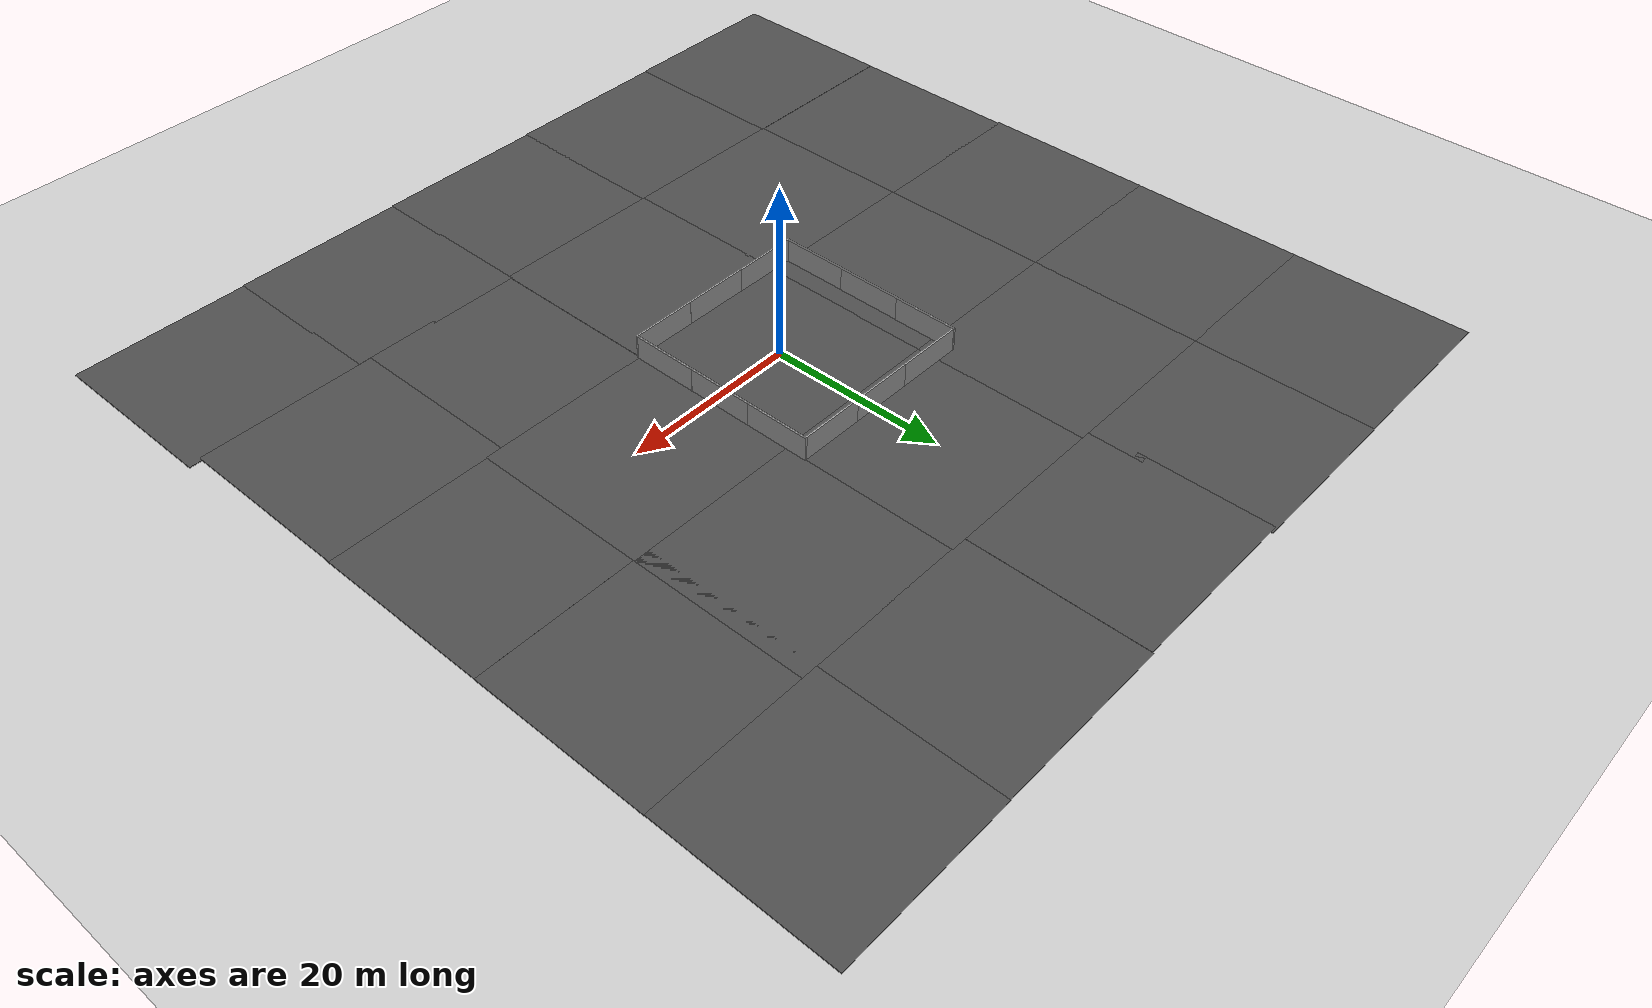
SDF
<sdf version="1.6">
 <world name="default">
  <light name="sun" type="directional">
   <pose>0 0 10 0 -0 0</pose>
   <diffuse>0.8 0.8 0.8 1</diffuse>
   <specular>0.2 0.2 0.2 1</specular>
   <attenuation>
    <range>1000</range>
    <constant>0.9</constant>
    <linear>0.01</linear>
    <quadratic>0.001</quadratic>
   </attenuation>
   <direction>-0.5 0.1 -0.9</direction>
  </light>
  <model name="ground_plane">
   <static>1</static>
   <link name="link">
    <collision name="collision">
     <geometry><plane><normal>0 0 1</normal><size>100 100</size></plane></geometry>
     <surface><friction><ode><mu>100</mu><mu2>50</mu2></ode></friction></surface>
    </collision>
    <visual name="visual">
     <cast_shadows>0</cast_shadows>
     <geometry><plane><normal>0 0 1</normal><size>100 100</size></plane></geometry>
     <material>
      <script><uri>file://media/materials/scripts/gazebo.material</uri><name>Gazebo/Grey</name></script>
     </material>
    </visual>
   </link>
  </model>
  <gravity>0 0 -9.8</gravity>
  <magnetic_field>6e-06 2.3e-05 -4.2e-05</magnetic_field>
  <atmosphere type="adiabatic"/>
  <physics name="default_physics" default="0" type="ode">
   <max_step_size>0.001</max_step_size>
   <real_time_factor>1</real_time_factor>
   <real_time_update_rate>1000</real_time_update_rate>
  </physics>
  <scene><ambient>0.4 0.4 0.4 1</ambient><background>0.7 0.7 0.7 1</background><shadows>1</shadows></scene>
  <spherical_coordinates>
   <surface_model>EARTH_WGS84</surface_model>
   <latitude_deg>0</latitude_deg>
   <longitude_deg>0</longitude_deg>
   <elevation>0</elevation>
   <heading_deg>0</heading_deg>
  </spherical_coordinates>
  <model name="asphalt_plane">
   <static>1</static>
   <link name="link">
    <collision name="collision"><geometry><box><size>20 20 0.1</size></box></geometry></collision>
    <visual name="visual">
     <cast_shadows>0</cast_shadows>
     <geometry><box><size>20 20 0.1</size></box></geometry>
     <material>
      <script>
       <uri>model://asphalt_plane/materials/scripts</uri>
       <uri>model://asphalt_plane/materials/textures</uri>
       <name>vrc/asphalt</name>
      </script>
     </material>
    </visual>
   </link>
   <pose>-0.035436 -0.049554 0 0 -0 0</pose>
  </model>
  <model name="asphalt_plane_clone">
   <static>1</static>
   <link name="link">
    <collision name="collision"><geometry><box><size>20 20 0.1</size></box></geometry></collision>
    <visual name="visual">
     <cast_shadows>0</cast_shadows>
     <geometry><box><size>20 20 0.1</size></box></geometry>
     <material>
      <script>
       <uri>model://asphalt_plane/materials/scripts</uri>
       <uri>model://asphalt_plane/materials/textures</uri>
       <name>vrc/asphalt</name>
      </script>
     </material>
    </visual>
   </link>
   <pose>-0.017474 19.8639 0 0 -0 0</pose>
  </model>
  <model name="asphalt_plane_clone_0">
   <static>1</static>
   <link name="link">
    <collision name="collision"><geometry><box><size>20 20 0.1</size></box></geometry></collision>
    <visual name="visual">
     <cast_shadows>0</cast_shadows>
     <geometry><box><size>20 20 0.1</size></box></geometry>
     <material>
      <script>
       <uri>model://asphalt_plane/materials/scripts</uri>
       <uri>model://asphalt_plane/materials/textures</uri>
       <name>vrc/asphalt</name>
      </script>
     </material>
    </visual>
   </link>
   <pose>19.9692 -0.038986 0 0 -0 0</pose>
  </model>
  <model name="asphalt_plane_clone_1">
   <static>1</static>
   <link name="link">
    <collision name="collision"><geometry><box><size>20 20 0.1</size></box></geometry></collision>
    <visual name="visual">
     <cast_shadows>0</cast_shadows>
     <geometry><box><size>20 20 0.1</size></box></geometry>
     <material>
      <script>
       <uri>model://asphalt_plane/materials/scripts</uri>
       <uri>model://asphalt_plane/materials/textures</uri>
       <name>vrc/asphalt</name>
      </script>
     </material>
    </visual>
   </link>
   <pose>-0.166139 -20.0107 0 0 -0 0</pose>
  </model>
  <model name="asphalt_plane_clone_2">
   <static>1</static>
   <link name="link">
    <collision name="collision"><geometry><box><size>20 20 0.1</size></box></geometry></collision>
    <visual name="visual">
     <cast_shadows>0</cast_shadows>
     <geometry><box><size>20 20 0.1</size></box></geometry>
     <material>
      <script>
       <uri>model://asphalt_plane/materials/scripts</uri>
       <uri>model://asphalt_plane/materials/textures</uri>
       <name>vrc/asphalt</name>
      </script>
     </material>
    </visual>
   </link>
   <pose>-19.9402 -0.005264 0 0 -0 0</pose>
  </model>
  <model name="asphalt_plane_clone_3">
   <static>1</static>
   <link name="link">
    <collision name="collision"><geometry><box><size>20 20 0.1</size></box></geometry></collision>
    <visual name="visual">
     <cast_shadows>0</cast_shadows>
     <geometry><box><size>20 20 0.1</size></box></geometry>
     <material>
      <script>
       <uri>model://asphalt_plane/materials/scripts</uri>
       <uri>model://asphalt_plane/materials/textures</uri>
       <name>vrc/asphalt</name>
      </script>
     </material>
    </visual>
   </link>
   <pose>-39.9405 -0.010147 0 0 -0 0</pose>
  </model>
  <model name="asphalt_plane_clone_4">
   <static>1</static>
   <link name="link">
    <collision name="collision"><geometry><box><size>20 20 0.1</size></box></geometry></collision>
    <visual name="visual">
     <cast_shadows>0</cast_shadows>
     <geometry><box><size>20 20 0.1</size></box></geometry>
     <material>
      <script>
       <uri>model://asphalt_plane/materials/scripts</uri>
       <uri>model://asphalt_plane/materials/textures</uri>
       <name>vrc/asphalt</name>
      </script>
     </material>
    </visual>
   </link>
   <pose>-19.9561 19.8707 0 0 -0 0</pose>
  </model>
  <model name="asphalt_plane_clone_5">
   <static>1</static>
   <link name="link">
    <collision name="collision"><geometry><box><size>20 20 0.1</size></box></geometry></collision>
    <visual name="visual">
     <cast_shadows>0</cast_shadows>
     <geometry><box><size>20 20 0.1</size></box></geometry>
     <material>
      <script>
       <uri>model://asphalt_plane/materials/scripts</uri>
       <uri>model://asphalt_plane/materials/textures</uri>
       <name>vrc/asphalt</name>
      </script>
     </material>
    </visual>
   </link>
   <pose>19.9635 19.8334 0 0 -0 0</pose>
  </model>
  <model name="asphalt_plane_clone_6">
   <static>1</static>
   <link name="link">
    <collision name="collision"><geometry><box><size>20 20 0.1</size></box></geometry></collision>
    <visual name="visual">
     <cast_shadows>0</cast_shadows>
     <geometry><box><size>20 20 0.1</size></box></geometry>
     <material>
      <script>
       <uri>model://asphalt_plane/materials/scripts</uri>
       <uri>model://asphalt_plane/materials/textures</uri>
       <name>vrc/asphalt</name>
      </script>
     </material>
    </visual>
   </link>
   <pose>19.8504 -19.9679 0 0 -0 0</pose>
  </model>
  <model name="asphalt_plane_clone_7">
   <static>1</static>
   <link name="link">
    <collision name="collision"><geometry><box><size>20 20 0.1</size></box></geometry></collision>
    <visual name="visual">
     <cast_shadows>0</cast_shadows>
     <geometry><box><size>20 20 0.1</size></box></geometry>
     <material>
      <script>
       <uri>model://asphalt_plane/materials/scripts</uri>
       <uri>model://asphalt_plane/materials/textures</uri>
       <name>vrc/asphalt</name>
      </script>
     </material>
    </visual>
   </link>
   <pose>-19.9737 -19.9962 0 0 -0 0</pose>
  </model>
  <model name="asphalt_plane_clone_8">
   <static>1</static>
   <link name="link">
    <collision name="collision"><geometry><box><size>20 20 0.1</size></box></geometry></collision>
    <visual name="visual">
     <cast_shadows>0</cast_shadows>
     <geometry><box><size>20 20 0.1</size></box></geometry>
     <material>
      <script>
       <uri>model://asphalt_plane/materials/scripts</uri>
       <uri>model://asphalt_plane/materials/textures</uri>
       <name>vrc/asphalt</name>
      </script>
     </material>
    </visual>
   </link>
   <pose>-39.7486 -19.8751 0 0 -0 0</pose>
  </model>
  <model name="asphalt_plane_clone_9">
   <static>1</static>
   <link name="link">
    <collision name="collision"><geometry><box><size>20 20 0.1</size></box></geometry></collision>
    <visual name="visual">
     <cast_shadows>0</cast_shadows>
     <geometry><box><size>20 20 0.1</size></box></geometry>
     <material>
      <script>
       <uri>model://asphalt_plane/materials/scripts</uri>
       <uri>model://asphalt_plane/materials/textures</uri>
       <name>vrc/asphalt</name>
      </script>
     </material>
    </visual>
   </link>
   <pose>-39.9079 19.9034 0 0 -0 0</pose>
  </model>
  <model name="asphalt_plane_clone_10">
   <static>1</static>
   <link name="link">
    <collision name="collision"><geometry><box><size>20 20 0.1</size></box></geometry></collision>
    <visual name="visual">
     <cast_shadows>0</cast_shadows>
     <geometry><box><size>20 20 0.1</size></box></geometry>
     <material>
      <script>
       <uri>model://asphalt_plane/materials/scripts</uri>
       <uri>model://asphalt_plane/materials/textures</uri>
       <name>vrc/asphalt</name>
      </script>
     </material>
    </visual>
   </link>
   <pose>-39.906 39.7932 0 0 -0 0</pose>
  </model>
  <model name="asphalt_plane_clone_11">
   <static>1</static>
   <link name="link">
    <collision name="collision"><geometry><box><size>20 20 0.1</size></box></geometry></collision>
    <visual name="visual">
     <cast_shadows>0</cast_shadows>
     <geometry><box><size>20 20 0.1</size></box></geometry>
     <material>
      <script>
       <uri>model://asphalt_plane/materials/scripts</uri>
       <uri>model://asphalt_plane/materials/textures</uri>
       <name>vrc/asphalt</name>
      </script>
     </material>
    </visual>
   </link>
   <pose>-20.9908 39.8352 0 0 -0 0</pose>
  </model>
  <model name="asphalt_plane_clone_12">
   <static>1</static>
   <link name="link">
    <collision name="collision"><geometry><box><size>20 20 0.1</size></box></geometry></collision>
    <visual name="visual">
     <cast_shadows>0</cast_shadows>
     <geometry><box><size>20 20 0.1</size></box></geometry>
     <material>
      <script>
       <uri>model://asphalt_plane/materials/scripts</uri>
       <uri>model://asphalt_plane/materials/textures</uri>
       <name>vrc/asphalt</name>
      </script>
     </material>
    </visual>
   </link>
   <pose>-1.84283 39.6085 0 0 -0 0</pose>
  </model>
  <model name="asphalt_plane_clone_13">
   <static>1</static>
   <link name="link">
    <collision name="collision"><geometry><box><size>20 20 0.1</size></box></geometry></collision>
    <visual name="visual">
     <cast_shadows>0</cast_shadows>
     <geometry><box><size>20 20 0.1</size></box></geometry>
     <material>
      <script>
       <uri>model://asphalt_plane/materials/scripts</uri>
       <uri>model://asphalt_plane/materials/textures</uri>
       <name>vrc/asphalt</name>
      </script>
     </material>
    </visual>
   </link>
   <pose>18.1684 39.761 0 0 -0 0</pose>
  </model>
  <model name="asphalt_plane_clone_14">
   <static>1</static>
   <link name="link">
    <collision name="collision"><geometry><box><size>20 20 0.1</size></box></geometry></collision>
    <visual name="visual">
     <cast_shadows>0</cast_shadows>
     <geometry><box><size>20 20 0.1</size></box></geometry>
     <material>
      <script>
       <uri>model://asphalt_plane/materials/scripts</uri>
       <uri>model://asphalt_plane/materials/textures</uri>
       <name>vrc/asphalt</name>
      </script>
     </material>
    </visual>
   </link>
   <pose>38.1611 39.8084 0 0 -0 0</pose>
  </model>
  <model name="asphalt_plane_clone_15">
   <static>1</static>
   <link name="link">
    <collision name="collision"><geometry><box><size>20 20 0.1</size></box></geometry></collision>
    <visual name="visual">
     <cast_shadows>0</cast_shadows>
     <geometry><box><size>20 20 0.1</size></box></geometry>
     <material>
      <script>
       <uri>model://asphalt_plane/materials/scripts</uri>
       <uri>model://asphalt_plane/materials/textures</uri>
       <name>vrc/asphalt</name>
      </script>
     </material>
    </visual>
   </link>
   <pose>38.1952 19.8491 0 0 -0 0</pose>
  </model>
  <model name="asphalt_plane_clone_16">
   <static>1</static>
   <link name="link">
    <collision name="collision"><geometry><box><size>20 20 0.1</size></box></geometry></collision>
    <visual name="visual">
     <cast_shadows>0</cast_shadows>
     <geometry><box><size>20 20 0.1</size></box></geometry>
     <material>
      <script>
       <uri>model://asphalt_plane/materials/scripts</uri>
       <uri>model://asphalt_plane/materials/textures</uri>
       <name>vrc/asphalt</name>
      </script>
     </material>
    </visual>
   </link>
   <pose>38.1806 -0.156102 0 0 -0 0</pose>
  </model>
  <model name="asphalt_plane_clone_17">
   <static>1</static>
   <link name="link">
    <collision name="collision"><geometry><box><size>20 20 0.1</size></box></geometry></collision>
    <visual name="visual">
     <cast_shadows>0</cast_shadows>
     <geometry><box><size>20 20 0.1</size></box></geometry>
     <material>
      <script>
       <uri>model://asphalt_plane/materials/scripts</uri>
       <uri>model://asphalt_plane/materials/textures</uri>
       <name>vrc/asphalt</name>
      </script>
     </material>
    </visual>
   </link>
   <pose>38.1279 -19.9166 0 0 -0 0</pose>
  </model>
  <model name="asphalt_plane_clone_18">
   <static>1</static>
   <link name="link">
    <collision name="collision"><geometry><box><size>20 20 0.1</size></box></geometry></collision>
    <visual name="visual">
     <cast_shadows>0</cast_shadows>
     <geometry><box><size>20 20 0.1</size></box></geometry>
     <material>
      <script>
       <uri>model://asphalt_plane/materials/scripts</uri>
       <uri>model://asphalt_plane/materials/textures</uri>
       <name>vrc/asphalt</name>
      </script>
     </material>
    </visual>
   </link>
   <pose>-39.7977 -39.9286 0 0 -0 0</pose>
  </model>
  <model name="asphalt_plane_clone_19">
   <static>1</static>
   <link name="link">
    <collision name="collision"><geometry><box><size>20 20 0.1</size></box></geometry></collision>
    <visual name="visual">
     <cast_shadows>0</cast_shadows>
     <geometry><box><size>20 20 0.1</size></box></geometry>
     <material>
      <script>
       <uri>model://asphalt_plane/materials/scripts</uri>
       <uri>model://asphalt_plane/materials/textures</uri>
       <name>vrc/asphalt</name>
      </script>
     </material>
    </visual>
   </link>
   <pose>-19.97 -39.8205 0 0 -0 0</pose>
  </model>
  <model name="asphalt_plane_clone_20">
   <static>1</static>
   <link name="link">
    <collision name="collision"><geometry><box><size>20 20 0.1</size></box></geometry></collision>
    <visual name="visual">
     <cast_shadows>0</cast_shadows>
     <geometry><box><size>20 20 0.1</size></box></geometry>
     <material>
      <script>
       <uri>model://asphalt_plane/materials/scripts</uri>
       <uri>model://asphalt_plane/materials/textures</uri>
       <name>vrc/asphalt</name>
      </script>
     </material>
    </visual>
   </link>
   <pose>-0.070739 -39.7144 0 0 -0 0</pose>
  </model>
  <model name="asphalt_plane_clone_21">
   <static>1</static>
   <link name="link">
    <collision name="collision"><geometry><box><size>20 20 0.1</size></box></geometry></collision>
    <visual name="visual">
     <cast_shadows>0</cast_shadows>
     <geometry><box><size>20 20 0.1</size></box></geometry>
     <material>
      <script>
       <uri>model://asphalt_plane/materials/scripts</uri>
       <uri>model://asphalt_plane/materials/textures</uri>
       <name>vrc/asphalt</name>
      </script>
     </material>
    </visual>
   </link>
   <pose>19.742 -39.5984 0 0 -0 0</pose>
  </model>
  <model name="asphalt_plane_clone_22">
   <static>1</static>
   <link name="link">
    <collision name="collision"><geometry><box><size>20 20 0.1</size></box></geometry></collision>
    <visual name="visual">
     <cast_shadows>0</cast_shadows>
     <geometry><box><size>20 20 0.1</size></box></geometry>
     <material>
      <script>
       <uri>model://asphalt_plane/materials/scripts</uri>
       <uri>model://asphalt_plane/materials/textures</uri>
       <name>vrc/asphalt</name>
      </script>
     </material>
    </visual>
   </link>
   <pose>39.5086 -39.4625 0 0 -0 0</pose>
  </model>
  <model name="grey_wall">
   <static>1</static>
   <link name="link">
    <pose>0 0 1.4 0 -0 0</pose>
    <collision name="collision"><geometry><box><size>7.5 0.2 2.8</size></box></geometry></collision>
    <visual name="visual">
     <cast_shadows>0</cast_shadows>
     <geometry><box><size>7.5 0.2 2.8</size></box></geometry>
     <material>
      <script>
       <uri>model://grey_wall/materials/scripts</uri>
       <uri>model://grey_wall/materials/textures</uri>
       <name>vrc/grey_wall</name>
      </script>
     </material>
    </visual>
   </link>
   <pose>6.27963 -10.1134 0 0 -0 0</pose>
  </model>
  <model name="grey_wall_clone">
   <static>1</static>
   <link name="link">
    <pose>0 0 1.4 0 -0 0</pose>
    <collision name="collision"><geometry><box><size>7.5 0.2 2.8</size></box></geometry></collision>
    <visual name="visual">
     <cast_shadows>0</cast_shadows>
     <geometry><box><size>7.5 0.2 2.8</size></box></geometry>
     <material>
      <script>
       <uri>model://grey_wall/materials/scripts</uri>
       <uri>model://grey_wall/materials/textures</uri>
       <name>vrc/grey_wall</name>
      </script>
     </material>
    </visual>
   </link>
   <pose>-1.22244 -10.1136 0 0 -0 0</pose>
  </model>
  <model name="grey_wall_clone_0">
   <static>1</static>
   <link name="link">
    <pose>0 0 1.4 0 -0 0</pose>
    <collision name="collision"><geometry><box><size>7.5 0.2 2.8</size></box></geometry></collision>
    <visual name="visual">
     <cast_shadows>0</cast_shadows>
     <geometry><box><size>7.5 0.2 2.8</size></box></geometry>
     <material>
      <script>
       <uri>model://grey_wall/materials/scripts</uri>
       <uri>model://grey_wall/materials/textures</uri>
       <name>vrc/grey_wall</name>
      </script>
     </material>
    </visual>
   </link>
   <pose>-8.72881 -10.0682 0 0 -0 0</pose>
  </model>
  <model name="grey_wall_clone_1">
   <static>1</static>
   <link name="link">
    <pose>0 0 1.4 0 -0 0</pose>
    <collision name="collision"><geometry><box><size>7.5 0.2 2.8</size></box></geometry></collision>
    <visual name="visual">
     <cast_shadows>0</cast_shadows>
     <geometry><box><size>7.5 0.2 2.8</size></box></geometry>
     <material>
      <script>
       <uri>model://grey_wall/materials/scripts</uri>
       <uri>model://grey_wall/materials/textures</uri>
       <name>vrc/grey_wall</name>
      </script>
     </material>
    </visual>
   </link>
   <pose>-12.3148 -6.2203 0 0 0 -1.57411</pose>
  </model>
  <model name="grey_wall_clone_1_clone">
   <static>1</static>
   <link name="link">
    <pose>0 0 1.4 0 -0 0</pose>
    <collision name="collision"><geometry><box><size>7.5 0.2 2.8</size></box></geometry></collision>
    <visual name="visual">
     <cast_shadows>0</cast_shadows>
     <geometry><box><size>7.5 0.2 2.8</size></box></geometry>
     <material>
      <script>
       <uri>model://grey_wall/materials/scripts</uri>
       <uri>model://grey_wall/materials/textures</uri>
       <name>vrc/grey_wall</name>
      </script>
     </material>
    </visual>
   </link>
   <pose>-12.2607 1.29997 0 0 0 -1.57411</pose>
  </model>
  <model name="grey_wall_clone_1_clone_0">
   <static>1</static>
   <link name="link">
    <pose>0 0 1.4 0 -0 0</pose>
    <collision name="collision"><geometry><box><size>7.5 0.2 2.8</size></box></geometry></collision>
    <visual name="visual">
     <cast_shadows>0</cast_shadows>
     <geometry><box><size>7.5 0.2 2.8</size></box></geometry>
     <material>
      <script>
       <uri>model://grey_wall/materials/scripts</uri>
       <uri>model://grey_wall/materials/textures</uri>
       <name>vrc/grey_wall</name>
      </script>
     </material>
    </visual>
   </link>
   <pose>-12.1947 8.78326 0 0 0 -1.57411</pose>
  </model>
  <model name="grey_wall_clone_1_clone_1">
   <static>1</static>
   <link name="link">
    <pose>0 0 1.4 0 -0 0</pose>
    <collision name="collision"><geometry><box><size>7.5 0.2 2.8</size></box></geometry></collision>
    <visual name="visual">
     <cast_shadows>0</cast_shadows>
     <geometry><box><size>7.5 0.2 2.8</size></box></geometry>
     <material>
      <script>
       <uri>model://grey_wall/materials/scripts</uri>
       <uri>model://grey_wall/materials/textures</uri>
       <name>vrc/grey_wall</name>
      </script>
     </material>
    </visual>
   </link>
   <pose>9.96193 -6.25437 0 0 0 -1.57411</pose>
  </model>
  <model name="grey_wall_clone_1_clone_2">
   <static>1</static>
   <link name="link">
    <pose>0 0 1.4 0 -0 0</pose>
    <collision name="collision"><geometry><box><size>7.5 0.2 2.8</size></box></geometry></collision>
    <visual name="visual">
     <cast_shadows>0</cast_shadows>
     <geometry><box><size>7.5 0.2 2.8</size></box></geometry>
     <material>
      <script>
       <uri>model://grey_wall/materials/scripts</uri>
       <uri>model://grey_wall/materials/textures</uri>
       <name>vrc/grey_wall</name>
      </script>
     </material>
    </visual>
   </link>
   <pose>9.96668 1.21149 0 0 0 -1.57411</pose>
  </model>
  <model name="grey_wall_clone_1_clone_3">
   <static>1</static>
   <link name="link">
    <pose>0 0 1.4 0 -0 0</pose>
    <collision name="collision"><geometry><box><size>7.5 0.2 2.8</size></box></geometry></collision>
    <visual name="visual">
     <cast_shadows>0</cast_shadows>
     <geometry><box><size>7.5 0.2 2.8</size></box></geometry>
     <material>
      <script>
       <uri>model://grey_wall/materials/scripts</uri>
       <uri>model://grey_wall/materials/textures</uri>
       <name>vrc/grey_wall</name>
      </script>
     </material>
    </visual>
   </link>
   <pose>9.98696 8.68011 0 0 0 -1.57411</pose>
  </model>
  <model name="grey_wall_clone_1_clone_4">
   <static>1</static>
   <link name="link">
    <pose>0 0 1.4 0 -0 0</pose>
    <collision name="collision"><geometry><box><size>7.5 0.2 2.8</size></box></geometry></collision>
    <visual name="visual">
     <cast_shadows>0</cast_shadows>
     <geometry><box><size>7.5 0.2 2.8</size></box></geometry>
     <material>
      <script>
       <uri>model://grey_wall/materials/scripts</uri>
       <uri>model://grey_wall/materials/textures</uri>
       <name>vrc/grey_wall</name>
      </script>
     </material>
    </visual>
   </link>
   <pose>6.3336 12.3426 0 0 0 -0.004686</pose>
  </model>
  <model name="grey_wall_clone_1_clone_4_clone">
   <static>1</static>
   <link name="link">
    <pose>0 0 1.4 0 -0 0</pose>
    <collision name="collision"><geometry><box><size>7.5 0.2 2.8</size></box></geometry></collision>
    <visual name="visual">
     <cast_shadows>0</cast_shadows>
     <geometry><box><size>7.5 0.2 2.8</size></box></geometry>
     <material>
      <script>
       <uri>model://grey_wall/materials/scripts</uri>
       <uri>model://grey_wall/materials/textures</uri>
       <name>vrc/grey_wall</name>
      </script>
     </material>
    </visual>
   </link>
   <pose>-1.10431 12.3717 0 0 0 -0.004686</pose>
  </model>
  <model name="grey_wall_clone_1_clone_4_clone_0">
   <static>1</static>
   <link name="link">
    <pose>0 0 1.4 0 -0 0</pose>
    <collision name="collision"><geometry><box><size>7.5 0.2 2.8</size></box></geometry></collision>
    <visual name="visual">
     <cast_shadows>0</cast_shadows>
     <geometry><box><size>7.5 0.2 2.8</size></box></geometry>
     <material>
      <script>
       <uri>model://grey_wall/materials/scripts</uri>
       <uri>model://grey_wall/materials/textures</uri>
       <name>vrc/grey_wall</name>
      </script>
     </material>
    </visual>
   </link>
   <pose>-8.27258 12.4092 0 0 0 -0.004686</pose>
  </model>
 </world>
</sdf>
